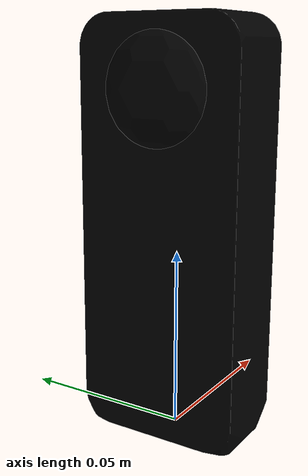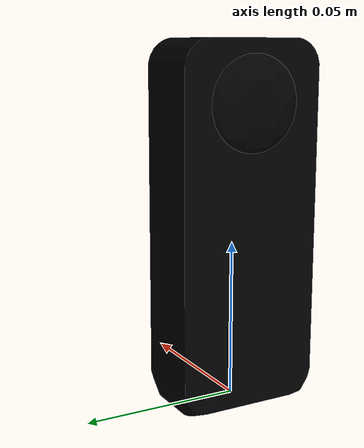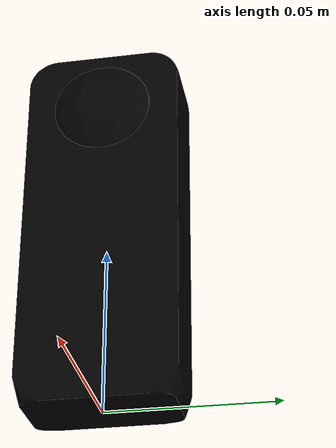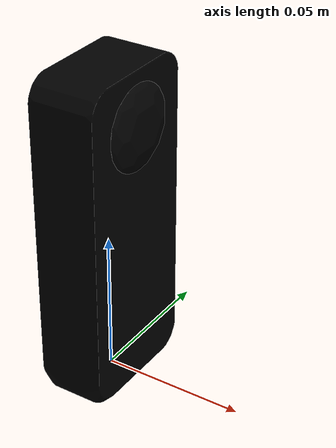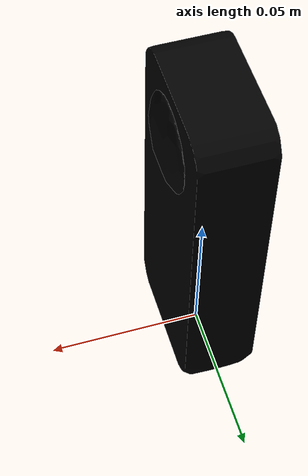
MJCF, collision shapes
<?xml version='1.0' encoding='utf-8'?>
<mujoco model="insta360_one_x2">
  <!--Independent approximate geometry; fixed sites are geometric references, not calibrated optical frames.-->
  <compiler angle="radian" inertiafromgeom="false" strippath="false" />
  <option timestep="0.002" gravity="0 0 -9.81" />
  <asset>
    <mesh name="one_x2_visual_mesh_0" file="../assets/meshes/visual/aperture.obj" scale="1 1 1" inertia="shell" />
    <mesh name="one_x2_visual_mesh_1" file="../assets/meshes/visual/coating_edge.obj" scale="1 1 1" inertia="shell" />
    <mesh name="one_x2_visual_mesh_2" file="../assets/meshes/visual/control.obj" scale="1 1 1" inertia="shell" />
    <mesh name="one_x2_visual_mesh_3" file="../assets/meshes/visual/display_edge.obj" scale="1 1 1" inertia="shell" />
    <mesh name="one_x2_visual_mesh_4" file="../assets/meshes/visual/glass_coating.obj" scale="1 1 1" inertia="shell" />
    <mesh name="one_x2_visual_mesh_5" file="../assets/meshes/visual/glass_outer.obj" scale="1 1 1" inertia="shell" />
    <mesh name="one_x2_visual_mesh_6" file="../assets/meshes/visual/housing.obj" scale="1 1 1" inertia="shell" />
    <mesh name="one_x2_visual_mesh_7" file="../assets/meshes/visual/housing_face.obj" scale="1 1 1" inertia="shell" />
    <mesh name="one_x2_visual_mesh_8" file="../assets/meshes/visual/lens_barrel.obj" scale="1 1 1" inertia="shell" />
    <mesh name="one_x2_visual_mesh_9" file="../assets/meshes/visual/lens_ring.obj" scale="1 1 1" inertia="shell" />
    <mesh name="one_x2_visual_mesh_10" file="../assets/meshes/visual/marking_dark.obj" scale="1 1 1" inertia="shell" />
    <mesh name="one_x2_visual_mesh_11" file="../assets/meshes/visual/marking_dim.obj" scale="1 1 1" inertia="shell" />
    <mesh name="one_x2_visual_mesh_12" file="../assets/meshes/visual/mount_metal.obj" scale="1 1 1" inertia="shell" />
    <mesh name="one_x2_visual_mesh_13" file="../assets/meshes/visual/optical_glass.obj" scale="1 1 1" inertia="shell" />
    <mesh name="one_x2_visual_mesh_14" file="../assets/meshes/visual/rubber.obj" scale="1 1 1" inertia="shell" />
    <mesh name="one_x2_visual_mesh_15" file="../assets/meshes/visual/screen.obj" scale="1 1 1" inertia="shell" />
    <mesh name="one_x2_visual_mesh_16" file="../assets/meshes/visual/seam.obj" scale="1 1 1" inertia="shell" />
    <mesh name="one_x2_visual_mesh_17" file="../assets/meshes/visual/status_dim.obj" scale="1 1 1" inertia="shell" />
    <mesh name="one_x2_collision_mesh_0" file="../assets/meshes/collision/body.stl" scale="1 1 1" inertia="convex" />
    <mesh name="one_x2_collision_mesh_1" file="../assets/meshes/collision/front_lens.stl" scale="1 1 1" inertia="convex" />
    <mesh name="one_x2_collision_mesh_2" file="../assets/meshes/collision/rear_lens.stl" scale="1 1 1" inertia="convex" />
  </asset>
  <worldbody>
    <body name="one_x2_link">
      <inertial pos="0 0 0.0565" mass="0.149" diaginertia="0.000185051046667 0.000169574913333 3.75291266667e-05" quat="1 0 0 0" />
      <geom name="one_x2_visual_0" type="mesh" mesh="one_x2_visual_mesh_0" pos="0 0 0" quat="1 0 0 0" density="0" group="2" contype="0" conaffinity="0" rgba="0.006 0.008 0.012 1" />
      <geom name="one_x2_visual_1" type="mesh" mesh="one_x2_visual_mesh_1" pos="0 0 0" quat="1 0 0 0" density="0" group="2" contype="0" conaffinity="0" rgba="0.075 0.09 0.12 1" />
      <geom name="one_x2_visual_2" type="mesh" mesh="one_x2_visual_mesh_2" pos="0 0 0" quat="1 0 0 0" density="0" group="2" contype="0" conaffinity="0" rgba="0.13 0.14 0.155 1" />
      <geom name="one_x2_visual_3" type="mesh" mesh="one_x2_visual_mesh_3" pos="0 0 0" quat="1 0 0 0" density="0" group="2" contype="0" conaffinity="0" rgba="0.115 0.126 0.144 1" />
      <geom name="one_x2_visual_4" type="mesh" mesh="one_x2_visual_mesh_4" pos="0 0 0" quat="1 0 0 0" density="0" group="2" contype="0" conaffinity="0" rgba="0.025 0.047 0.04 1" />
      <geom name="one_x2_visual_5" type="mesh" mesh="one_x2_visual_mesh_5" pos="0 0 0" quat="1 0 0 0" density="0" group="2" contype="0" conaffinity="0" rgba="0.035 0.045 0.058 1" />
      <geom name="one_x2_visual_6" type="mesh" mesh="one_x2_visual_mesh_6" pos="0 0 0" quat="1 0 0 0" density="0" group="2" contype="0" conaffinity="0" rgba="0.115 0.12 0.132 1" />
      <geom name="one_x2_visual_7" type="mesh" mesh="one_x2_visual_mesh_7" pos="0 0 0" quat="1 0 0 0" density="0" group="2" contype="0" conaffinity="0" rgba="0.092 0.099 0.108 1" />
      <geom name="one_x2_visual_8" type="mesh" mesh="one_x2_visual_mesh_8" pos="0 0 0" quat="1 0 0 0" density="0" group="2" contype="0" conaffinity="0" rgba="0.06 0.068 0.078 1" />
      <geom name="one_x2_visual_9" type="mesh" mesh="one_x2_visual_mesh_9" pos="0 0 0" quat="1 0 0 0" density="0" group="2" contype="0" conaffinity="0" rgba="0.19 0.205 0.225 1" />
      <geom name="one_x2_visual_10" type="mesh" mesh="one_x2_visual_mesh_10" pos="0 0 0" quat="1 0 0 0" density="0" group="2" contype="0" conaffinity="0" rgba="0.45 0.46 0.48 1" />
      <geom name="one_x2_visual_11" type="mesh" mesh="one_x2_visual_mesh_11" pos="0 0 0" quat="1 0 0 0" density="0" group="2" contype="0" conaffinity="0" rgba="0.4 0.42 0.45 1" />
      <geom name="one_x2_visual_12" type="mesh" mesh="one_x2_visual_mesh_12" pos="0 0 0" quat="1 0 0 0" density="0" group="2" contype="0" conaffinity="0" rgba="0.27 0.285 0.31 1" />
      <geom name="one_x2_visual_13" type="mesh" mesh="one_x2_visual_mesh_13" pos="0 0 0" quat="1 0 0 0" density="0" group="2" contype="0" conaffinity="0" rgba="0.008 0.014 0.02 1" />
      <geom name="one_x2_visual_14" type="mesh" mesh="one_x2_visual_mesh_14" pos="0 0 0" quat="1 0 0 0" density="0" group="2" contype="0" conaffinity="0" rgba="0.065 0.075 0.085 1" />
      <geom name="one_x2_visual_15" type="mesh" mesh="one_x2_visual_mesh_15" pos="0 0 0" quat="1 0 0 0" density="0" group="2" contype="0" conaffinity="0" rgba="0.015 0.019 0.027 1" />
      <geom name="one_x2_visual_16" type="mesh" mesh="one_x2_visual_mesh_16" pos="0 0 0" quat="1 0 0 0" density="0" group="2" contype="0" conaffinity="0" rgba="0.025 0.03 0.035 1" />
      <geom name="one_x2_visual_17" type="mesh" mesh="one_x2_visual_mesh_17" pos="0 0 0" quat="1 0 0 0" density="0" group="2" contype="0" conaffinity="0" rgba="0.02 0.45 0.58 1" />
      <geom name="one_x2_collision_0" type="mesh" mesh="one_x2_collision_mesh_0" pos="0 0 0" quat="1 0 0 0" density="0" group="3" contype="1" conaffinity="1" rgba="0 0 0 0" />
      <geom name="one_x2_collision_1" type="mesh" mesh="one_x2_collision_mesh_1" pos="0 0 0" quat="1 0 0 0" density="0" group="3" contype="1" conaffinity="1" rgba="0 0 0 0" />
      <geom name="one_x2_collision_2" type="mesh" mesh="one_x2_collision_mesh_2" pos="0 0 0" quat="1 0 0 0" density="0" group="3" contype="1" conaffinity="1" rgba="0 0 0 0" />
      <site name="one_x2_mount" pos="0 0 0" quat="1 0 0 0" type="sphere" size="0.001" group="4" rgba="0 0 0 0" />
      <site name="one_x2_rear_lens_surface" pos="-0.0149 0 0.094129" quat="0.500000000002 -0.5 -0.499999999998 0.5" type="sphere" size="0.001" group="4" rgba="0 0 0 0" />
      <site name="one_x2_front_lens_surface" pos="0.0149 0 0.094129" quat="0.500000000002 -0.5 0.499999999998 -0.5" type="sphere" size="0.001" group="4" rgba="0 0 0 0" />
    </body>
  </worldbody>
</mujoco>
